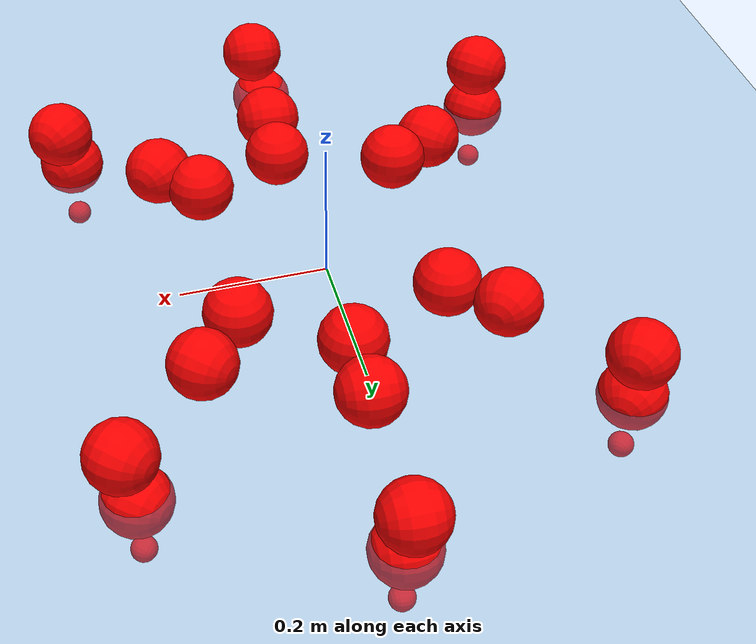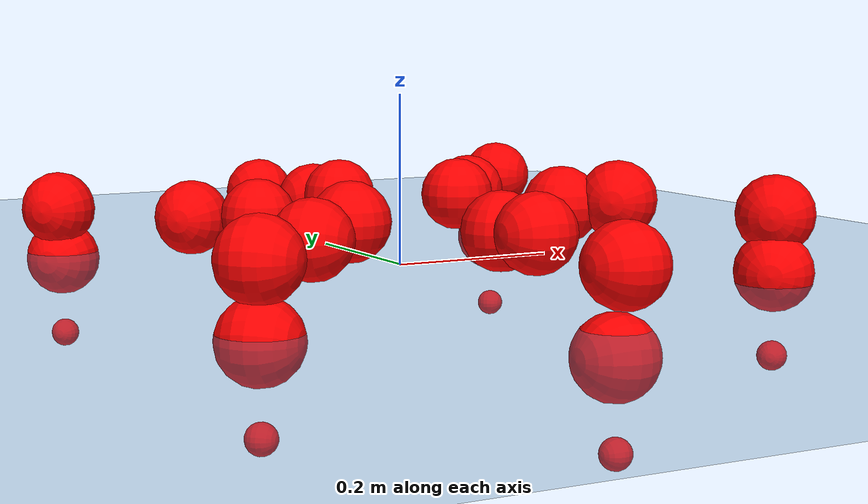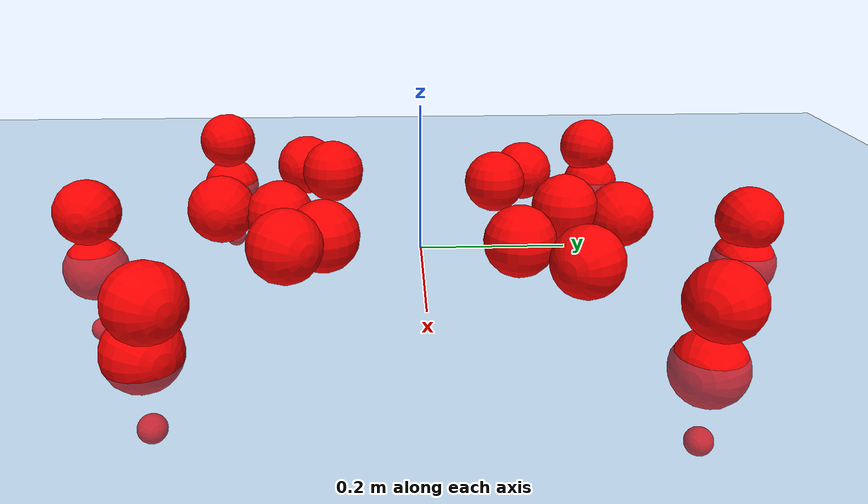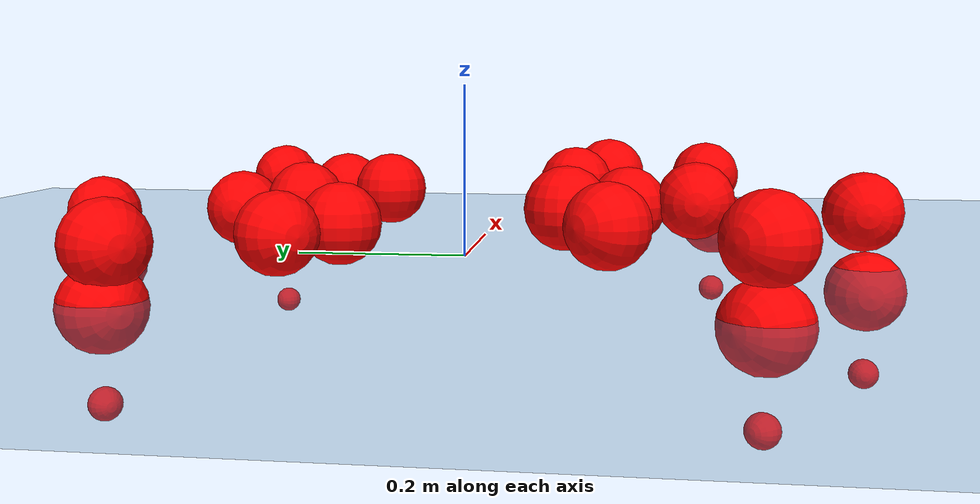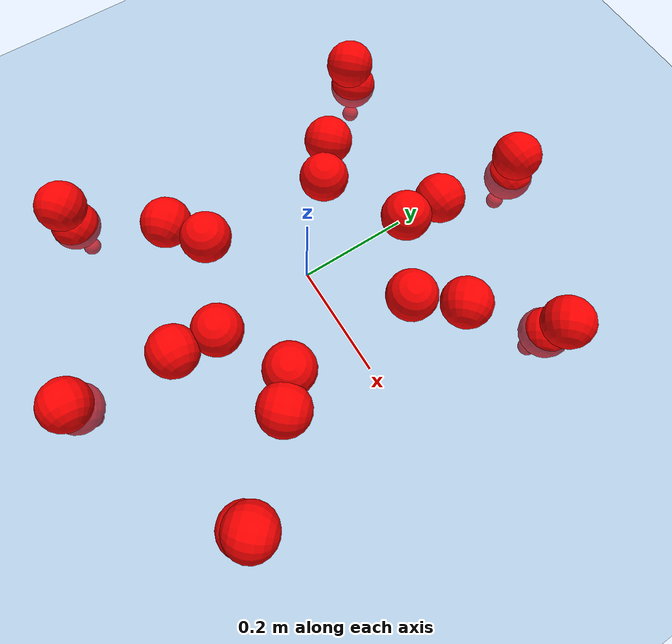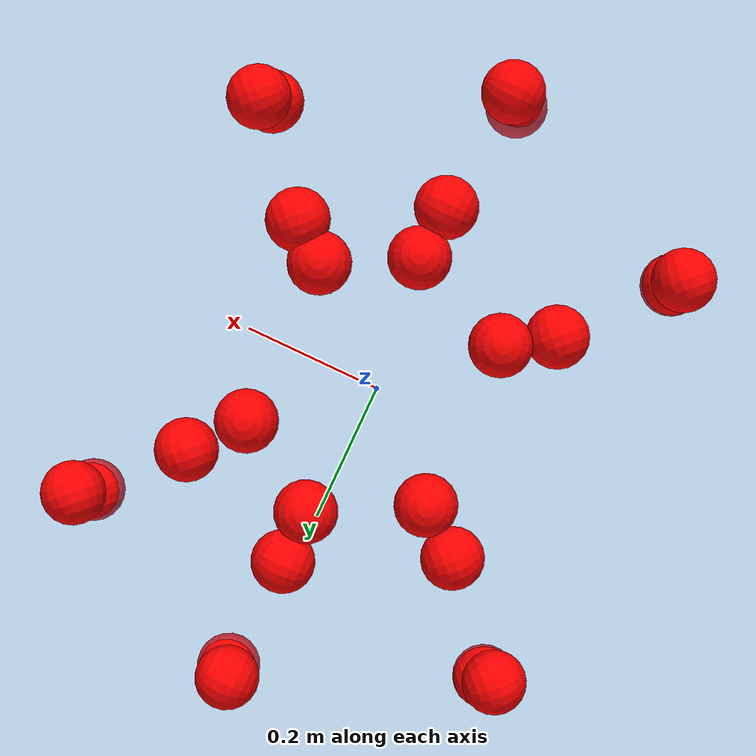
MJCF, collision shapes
<mujoco model="Golem">
  <compiler angle="radian" assetdir="assets" balanceinertia="true" inertiafromgeom="false"/>

  <option timestep="0.005" density="1.2" viscosity="2e-05"/>

  <size nkey="1"/>

  <visual>
    <quality shadowsize="8192"/>
    <map shadowclip="0.5"/>
  </visual>

  <default>
    <default class="/">
      <joint armature="0.01" damping="0.01" frictionloss="0.01"/>
      <geom contype="0" conaffinity="0" group="1" solref="-1000 -80"/>
      <site size="0.01 0.005 0.005" group="5"/>
      <general forcelimited="true" biastype="affine" gainprm="25" biasprm="0 -25 -0.5"/>
      <default class="visual">
        <geom type="mesh" group="2"/>
      </default>
      <default class="collision">
        <geom group="3"/>
      </default>
      <default class="foot">
        <geom size="0.01 0 0" condim="6" group="4" priority="1" solimp="0.015 1 0.01"/>
      </default>
      <default class="reward_collision_sphere">
        <geom group="5" rgba="1 0 0 1"/>
      </default>
    </default>
  </default>

  <asset>
    <texture type="skybox" colorspace="auto" name="//unnamed_texture_0" builtin="gradient" rgb1="0.95 0.95 0.95" rgb2="0.95 0.95 0.95" width="100" height="600"/>
    <texture type="2d" colorspace="auto" name="texplane" builtin="checker" rgb1="0.345 0.575 0.748" rgb2="0.345 0.575 0.748" markrgb="1 1 1" width="512" height="512"/>
    <material name="MatPlane" class="/" texture="texplane" texuniform="true" texrepeat="2 2" specular="0.9"/>
    <mesh name="body" class="/" file="body.stl" scale="0.001 0.001 0.001"/>
    <mesh name="coxa" class="/" file="coxa.stl" scale="0.001 0.001 0.001"/>
    <mesh name="femur" class="/" file="femur.stl" scale="0.001 0.001 0.001"/>
    <mesh name="tibia" class="/" file="tibia.stl" scale="0.001 0.001 0.001"/>
    <mesh name="tarsus" class="/" file="tarsus.stl" scale="0.001 0.001 0.001"/>
  </asset>

  <worldbody>
    <geom name="floor" class="/" size="100 100 0.125" type="plane" group="0" material="MatPlane"/>
    <light name="toplight_shadow" class="/" pos="0 0 5" dir="0.0990148 0.0990148 -0.990148" type="directional" ambient="0.04 0.04 0.04" diffuse="0.55 0.55 0.55" specular="0.12 0.12 0.12"/>
    <light name="toplight_fill" class="/" pos="0 0 5" dir="0.0990148 0.0990148 -0.990148" type="directional" castshadow="false" ambient="0.04 0.04 0.04" diffuse="0.3 0.3 0.3" specular="0.08 0.08 0.08"/>
    <body name="trunk" pos="0.00990591 0.00107934 0.00797632" quat="0.999999 0.00081982 -0.0013361 -0.000272293">
      <inertial pos="0.00320597 0.00501816 0.0134062" quat="0.997659 0.0204665 0.0383878 0.0527713" mass="5.74818" diaginertia="0.0060145 0.112214 0.0053152"/>
      <joint name="//unnamed_joint_0" type="free"/>
      <geom name="//unnamed_geom_1" class="/" pos="0 0 0.0552061" quat="1 0 0 0" type="mesh" rgba="0.9 0.9 0.9 1" mesh="body"/>
      <site name="imu" class="/" pos="0.0773148 0.0284879 0.124027" size="0.0112002"/>
      <camera name="track" class="/" pos="0 -3.23881 0" quat="0.707107 0.707107 0 0" mode="trackcom"/>
      <camera name="ego_camera" class="/" pos="0.114146 0 0.0862595" quat="-0.5 -0.5 0.5 0.5"/>
      <body name="coxa_RR" pos="-0.15636 -0.145393 0.0650133" quat="0.382684 -7.09625e-06 2.36216e-06 -0.923879">
        <inertial pos="0.00576871 0.00067168 0.00708861" quat="0.998904 -0.00531864 0.0395784 -0.02442" mass="0.32333" diaginertia="0.00500541 0.127389 0.00549166"/>
        <joint name="coxa_joint_RR" class="/" pos="0 0 0" axis="0.0334111 -0.0261918 -0.999098" range="-2.99855 2.86676" armature="0.0155983" damping="0.0209825" frictionloss="0.0159939"/>
        <geom name="//unnamed_geom_2" class="/" type="mesh" rgba="0.2 0.2 0.2 1" mesh="coxa"/>
        <geom name="//unnamed_geom_3" class="reward_collision_sphere" size="0.0448006" pos="-0.0263414 0 0"/>
        <body name="femur_RR" pos="0.0519973 -0.0154522 -0.00967366" quat="0.499077 -0.500242 0.500976 0.499703">
          <inertial pos="0.00640285 -0.0133977 -0.0149477" quat="0.999824 -0.00164311 0.0104473 0.0154947" mass="0.280782" diaginertia="0.00449583 0.102655 0.00394822"/>
          <joint name="femur_joint_RR" class="/" pos="0 0 0" axis="-0.0237414 0.00886854 -0.999679" stiffness="0.0214584" range="-3.20793 3.11866" armature="0.0080756" damping="0" frictionloss="0.00271509"/>
          <geom name="//unnamed_geom_4" class="/" type="mesh" rgba="0.9 0.9 0.9 1" mesh="femur"/>
          <geom name="//unnamed_geom_5" class="reward_collision_sphere" size="0.0448006"/>
          <body name="tibia_RR" pos="-0.00707514 -0.188426 0.0144747" quat="0.000271499 1 -0.000354282 0.000544211">
            <inertial pos="-0.00827425 0.013964 -0.00117622" quat="0.999952 -0.00278766 0.00873159 -0.00351658" mass="0.259019" diaginertia="0.0051989 0.112581 0.00481075"/>
            <joint name="tibia_joint_RR" class="/" pos="0 0 0" axis="0.000521107 0.00830602 0.999965" range="-3.13233 3.11823" armature="0.0103749" damping="0" frictionloss="0.0163997"/>
            <geom name="//unnamed_geom_6" class="/" type="mesh" rgba="0.2 0.2 0.2 1" mesh="tibia"/>
            <geom name="//unnamed_geom_7" class="reward_collision_sphere" size="0.0448006"/>
            <body name="tarsus_RR" pos="0.0780798 -0.000344534 0.000190129" quat="0.999999 -0.000589959 0.000729655 -0.000349616">
              <inertial pos="0.0617469 -0.00148129 0.0021036" quat="0.528891 0.481817 0.510166 0.477344" mass="0.239846" diaginertia="0.00429016 0.116094 0.00450866"/>
              <joint name="tarsus_joint_RR" class="/" pos="0 0 0" axis="0.0159453 -0.0216026 0.999639" stiffness="0.000752671" range="-2.84248 2.83147" armature="0.0104097" damping="0" frictionloss="0.0110314"/>
              <geom name="//unnamed_geom_8" class="/" type="mesh" rgba="0.9 0.9 0.9 1" mesh="tarsus"/>
              <geom name="foot_1" class="foot" size="0.00721553" pos="0.0983412 0 0" quat="0 -0.707107 0 0.707107"/>
              <geom name="//unnamed_geom_10" class="reward_collision_sphere" size="0.0448006"/>
              <geom name="//unnamed_geom_11" class="reward_collision_sphere" size="0.0168002" pos="0.09439 0 0"/>
              <site name="foot_1" class="foot" pos="0.0983412 0 0" quat="0 -0.707107 0 0.707107" size="0.0112002"/>
            </body>
          </body>
        </body>
      </body>
      <body name="coxa_RM" pos="0.0137558 -0.215735 0.0528844" quat="0.705261 -0.00135628 -0.00218564 -0.708944">
        <inertial pos="-0.00116929 0.00886799 0.00020769" quat="0.997389 0.0573634 0.0342593 -0.0274045" mass="0.231056" diaginertia="0.00418707 0.108893 0.00408704"/>
        <joint name="coxa_joint_RM" class="/" pos="0 0 0" axis="0.0238551 0.00949811 -0.99967" stiffness="0.00649054" range="-3.06341 3.07586" armature="0.0115794" damping="0" frictionloss="0.0125692"/>
        <geom name="//unnamed_geom_12" class="/" type="mesh" rgba="0.2 0.2 0.2 1" mesh="coxa"/>
        <geom name="//unnamed_geom_13" class="reward_collision_sphere" size="0.0448006" pos="-0.0263414 0 0"/>
        <body name="femur_RM" pos="0.0510615 -0.0037169 0.00630477" quat="0.50434 -0.50173 0.495607 0.498279">
          <inertial pos="0.0138069 0.00851551 0.0152241" quat="0.999942 -0.00923854 0.00451428 -0.00326736" mass="0.238981" diaginertia="0.00539445 0.11062 0.00434849"/>
          <joint name="femur_joint_RM" class="/" pos="0 0 0" axis="0.0401857 0.006806 -0.999169" range="-3.23053 2.86957" armature="0.00804914" damping="0.0105463" frictionloss="0.0184038"/>
          <geom name="//unnamed_geom_14" class="/" type="mesh" rgba="0.9 0.9 0.9 1" mesh="femur"/>
          <geom name="//unnamed_geom_15" class="reward_collision_sphere" size="0.0448006"/>
          <body name="tibia_RM" pos="0.0108595 -0.183715 -0.0148291" quat="-0.00321296 0.999993 -0.00211872 0.000305562">
            <inertial pos="-0.0028784 -0.00495551 0.00198115" quat="0.999996 0.00201738 0.00219928 -0.000245531" mass="0.253795" diaginertia="0.00420286 0.0913891 0.00425976"/>
            <joint name="tibia_joint_RM" class="/" pos="0 0 0" axis="-0.067409 0.0100662 0.997675" stiffness="0.00794643" range="-3.2656 3.38658" armature="0.0125493" damping="0.0492311" frictionloss="0.00717552"/>
            <geom name="//unnamed_geom_16" class="/" type="mesh" rgba="0.2 0.2 0.2 1" mesh="tibia"/>
            <geom name="//unnamed_geom_17" class="reward_collision_sphere" size="0.0448006"/>
            <body name="tarsus_RM" pos="0.0877813 0.0019238 0.0133544" quat="0.999999 0.000586926 -0.00059236 0.00108412">
              <inertial pos="0.0572463 0.000768133 -0.00995802" quat="0.483181 0.483236 0.546258 0.484378" mass="0.264095" diaginertia="0.00428508 0.103787 0.00524713"/>
              <joint name="tarsus_joint_RM" class="/" pos="0 0 0" axis="-0.0266267 0.0115507 0.999579" stiffness="0.0254507" range="-2.88872 3.42245" armature="0.0105864" damping="0" frictionloss="0.0137218"/>
              <geom name="//unnamed_geom_18" class="/" type="mesh" rgba="0.9 0.9 0.9 1" mesh="tarsus"/>
              <geom name="foot_2" class="foot" size="0.00891617" pos="0.0983412 0 0" quat="0 -0.707107 0 0.707107"/>
              <geom name="//unnamed_geom_20" class="reward_collision_sphere" size="0.0448006"/>
              <geom name="//unnamed_geom_21" class="reward_collision_sphere" size="0.0168002" pos="0.09439 0 0"/>
              <site name="foot_2" class="foot" pos="0.0983412 0 0" quat="0 -0.707107 0 0.707107" size="0.0112002"/>
            </body>
          </body>
        </body>
      </body>
      <body name="coxa_RF" pos="0.153345 -0.141689 0.0673138" quat="0.92458 0.00385159 0.000861326 -0.380967">
        <inertial pos="-0.00606501 0.0159692 -0.00383699" quat="0.999674 -0.0221017 0.00960981 0.00845991" mass="0.265719" diaginertia="0.00498277 0.0948462 0.00405759"/>
        <joint name="coxa_joint_RF" class="/" pos="0 0 0" axis="-0.016855 0.0233456 -0.999585" stiffness="0.0233882" range="-3.13227 2.93578" armature="0.012307" damping="0.0619341" frictionloss="0.0109311"/>
        <geom name="//unnamed_geom_22" class="/" type="mesh" rgba="0.2 0.2 0.2 1" mesh="coxa"/>
        <geom name="//unnamed_geom_23" class="reward_collision_sphere" size="0.0448006" pos="-0.0263414 0 0"/>
        <body name="femur_RF" pos="0.0381991 0.00737368 0.00807009" quat="0.500023 -0.500085 0.499912 0.499979">
          <inertial pos="-0.00277773 -0.000316211 -0.0113638" quat="0.999705 -0.0130902 -0.00529221 0.0197609" mass="0.285641" diaginertia="0.00510719 0.11857 0.00432092"/>
          <joint name="femur_joint_RF" class="/" pos="0 0 0" axis="-0.000201168 -0.000826933 -1" range="-3.41042 3.05787" armature="0.0122019" damping="0.0105159" frictionloss="0.0171689"/>
          <geom name="//unnamed_geom_24" class="/" type="mesh" rgba="0.9 0.9 0.9 1" mesh="femur"/>
          <geom name="//unnamed_geom_25" class="reward_collision_sphere" size="0.0448006"/>
          <body name="tibia_RF" pos="0.00965553 -0.177233 -0.00711637" quat="0.000323383 1 3.74494e-05 -0.000164786">
            <inertial pos="-0.00999434 0.00776386 -0.000717689" quat="0.997382 0.0204211 -0.0671246 0.0174862" mass="0.256908" diaginertia="0.00536165 0.124989 0.00464565"/>
            <joint name="tibia_joint_RF" class="/" pos="0 0 0" axis="0.0167004 0.0522585 0.998494" range="-3.14016 3.12353" armature="0.00909123" damping="0" frictionloss="0.0120716"/>
            <geom name="//unnamed_geom_26" class="/" type="mesh" rgba="0.2 0.2 0.2 1" mesh="tibia"/>
            <geom name="//unnamed_geom_27" class="reward_collision_sphere" size="0.0448006"/>
            <body name="tarsus_RF" pos="0.062176 0.00157384 0.0159536" quat="0.999991 0.00119813 -0.00132025 0.003825">
              <inertial pos="0.0456957 0.0122595 -0.00534072" quat="0.521355 0.484574 0.50111 0.492205" mass="0.333408" diaginertia="0.00531214 0.128467 0.00433284"/>
              <joint name="tarsus_joint_RF" class="/" pos="0 0 0" axis="0.0503765 0.0295065 0.998294" stiffness="0.0155906" range="-2.92194 3.12988" armature="0.0112562" damping="0" frictionloss="0.014078"/>
              <geom name="//unnamed_geom_28" class="/" type="mesh" rgba="0.9 0.9 0.9 1" mesh="tarsus"/>
              <geom name="foot_3" class="foot" size="0.00986802" pos="0.0983412 0 0" quat="0 -0.707107 0 0.707107"/>
              <geom name="//unnamed_geom_30" class="reward_collision_sphere" size="0.0448006"/>
              <geom name="//unnamed_geom_31" class="reward_collision_sphere" size="0.0168002" pos="0.09439 0 0"/>
              <site name="foot_3" class="foot" pos="0.0983412 0 0" quat="0 -0.707107 0 0.707107" size="0.0112002"/>
            </body>
          </body>
        </body>
      </body>
      <body name="coxa_LR" pos="-0.158635 0.134445 0.0449979" quat="0.381554 0.00213582 -0.00272112 0.92434">
        <inertial pos="0.00348817 0.00388915 -0.0122411" quat="0.999957 -0.00328624 -0.00772084 0.00390557" mass="0.276417" diaginertia="0.00490121 0.105107 0.0052014"/>
        <joint name="coxa_joint_LR" class="/" pos="0 0 0" axis="0.0130812 0.00229103 -0.999912" stiffness="0.0546318" range="-2.98975 3.02674" armature="0.0151404" damping="0.0211005" frictionloss="0.0189812"/>
        <geom name="//unnamed_geom_32" class="/" type="mesh" rgba="0.2 0.2 0.2 1" mesh="coxa"/>
        <geom name="//unnamed_geom_33" class="reward_collision_sphere" size="0.0448006" pos="-0.0263414 0 0"/>
        <body name="femur_LR" pos="0.0553226 0.00951737 -0.00375628" quat="0.500213 -0.501708 0.499179 0.498895">
          <inertial pos="-0.0129224 0.00694753 -0.0105826" quat="0.999556 0.0141942 0.0155108 0.0211175" mass="0.335185" diaginertia="0.00529591 0.112635 0.00490111"/>
          <joint name="femur_joint_LR" class="/" pos="0 0 0" axis="0.00256263 -0.00342896 0.999991" range="-2.84094 3.40827" armature="0.0188278" damping="0" frictionloss="0.0112111"/>
          <geom name="//unnamed_geom_34" class="/" type="mesh" rgba="0.9 0.9 0.9 1" mesh="femur"/>
          <geom name="//unnamed_geom_35" class="reward_collision_sphere" size="0.0448006"/>
          <body name="tibia_LR" pos="-0.00247289 -0.179948 -0.00445806" quat="0.00301216 0.999992 0.00208992 -0.00156911">
            <inertial pos="-0.00822213 0.0108974 -0.00108544" quat="0.999989 -0.00233995 0.00397271 -0.000425123" mass="0.242487" diaginertia="0.00496253 0.0950073 0.00535593"/>
            <joint name="tibia_joint_LR" class="/" pos="0 0 0" axis="0.0397771 -0.0485701 -0.998027" stiffness="0.040632" range="-3.19156 3.38074" armature="0.0144796" damping="0" frictionloss="0.0114414"/>
            <geom name="//unnamed_geom_36" class="/" type="mesh" rgba="0.2 0.2 0.2 1" mesh="tibia"/>
            <geom name="//unnamed_geom_37" class="reward_collision_sphere" size="0.0448006"/>
            <body name="tarsus_LR" pos="0.0630512 0.00031615 0.00966431" quat="0.999977 -0.00656173 0.000212879 -0.00171978">
              <inertial pos="0.0647718 0.0114971 0.0052278" quat="0.499263 0.503027 0.500636 0.497056" mass="0.283852" diaginertia="0.00540455 0.132784 0.00437236"/>
              <joint name="tarsus_joint_LR" class="/" pos="0 0 0" axis="0.00620187 0.00617975 -0.999962" stiffness="0.0434069" range="-3.13014 3.12272" armature="0.0073395" damping="0" frictionloss="0.0040148"/>
              <geom name="//unnamed_geom_38" class="/" type="mesh" rgba="0.9 0.9 0.9 1" mesh="tarsus"/>
              <geom name="foot_4" class="foot" size="0.0105102" pos="0.0983412 0 0" quat="0.707107 0 -0.707107 0"/>
              <geom name="//unnamed_geom_40" class="reward_collision_sphere" size="0.0448006"/>
              <geom name="//unnamed_geom_41" class="reward_collision_sphere" size="0.0168002" pos="0.09439 0 0"/>
              <site name="foot_4" class="foot" pos="0.0983412 0 0" quat="0.707107 0 -0.707107 0" size="0.0112002"/>
            </body>
          </body>
        </body>
      </body>
      <body name="coxa_LM" pos="0.00646424 0.220163 0.0546147" quat="0.707114 -0.00053078 -0.000218832 0.7071">
        <inertial pos="-0.0125662 -0.000916182 -0.00580011" quat="0.999557 0.0190047 0.0210003 -0.0091036" mass="0.32758" diaginertia="0.00486434 0.128955 0.00583629"/>
        <joint name="coxa_joint_LM" class="/" pos="0 0 0" axis="0.000457733 -0.00286669 -0.999996" range="-3.18718 3.15286" armature="0.01066" damping="0.0480557" frictionloss="0.0162484"/>
        <geom name="//unnamed_geom_42" class="/" type="mesh" rgba="0.2 0.2 0.2 1" mesh="coxa"/>
        <geom name="//unnamed_geom_43" class="reward_collision_sphere" size="0.0448006" pos="-0.0263414 0 0"/>
        <body name="femur_LM" pos="0.0501326 0.000565353 -0.0115292" quat="0.499768 -0.499955 0.500245 0.500032">
          <inertial pos="-0.00926043 0.000759383 0.008178" quat="0.999626 -0.0258951 -0.0062066 -0.00625986" mass="0.264035" diaginertia="0.00545606 0.099402 0.00353347"/>
          <joint name="femur_joint_LM" class="/" pos="0 0 0" axis="0.0578979 0.0407454 0.997491" stiffness="0.00156444" range="-3.41395 3.28625" armature="0.0129921" damping="0.0863079" frictionloss="0.011369"/>
          <geom name="//unnamed_geom_44" class="/" type="mesh" rgba="0.9 0.9 0.9 1" mesh="femur"/>
          <geom name="//unnamed_geom_45" class="reward_collision_sphere" size="0.0448006"/>
          <body name="tibia_LM" pos="0.00877618 -0.179926 -0.00169148" quat="-0.00220978 0.999996 0.000112043 -0.00147083">
            <inertial pos="0.013809 0.00080586 0.00108499" quat="0.999622 0.0124017 -0.0185467 -0.0160913" mass="0.264033" diaginertia="0.00507207 0.10864 0.00419283"/>
            <joint name="tibia_joint_LM" class="/" pos="0 0 0" axis="-0.000463233 0.00547121 -0.999985" range="-3.23918 3.28541" armature="0.016963" damping="0" frictionloss="0.0200382"/>
            <geom name="//unnamed_geom_46" class="/" type="mesh" rgba="0.2 0.2 0.2 1" mesh="tibia"/>
            <geom name="//unnamed_geom_47" class="reward_collision_sphere" size="0.0448006"/>
            <body name="tarsus_LM" pos="0.0637198 -0.00281914 0.00588473" quat="0.999996 0.00280715 -7.31201e-07 0.000104734">
              <inertial pos="0.0641461 -0.000269566 0.00930121" quat="0.463359 0.482397 0.506171 0.54441" mass="0.268196" diaginertia="0.00545484 0.11094 0.00496765"/>
              <joint name="tarsus_joint_LM" class="/" pos="0 0 0" axis="-0.0165656 -0.00489232 -0.999851" stiffness="0.00775277" range="-3.35726 3.15026" armature="0.00809429" damping="0" frictionloss="0.0101688"/>
              <geom name="//unnamed_geom_48" class="/" type="mesh" rgba="0.9 0.9 0.9 1" mesh="tarsus"/>
              <geom name="foot_5" class="foot" size="0.00453571" pos="0.0983412 0 0" quat="0.707107 0 -0.707107 0"/>
              <geom name="//unnamed_geom_50" class="reward_collision_sphere" size="0.0448006"/>
              <geom name="//unnamed_geom_51" class="reward_collision_sphere" size="0.0168002" pos="0.09439 0 0"/>
              <site name="foot_5" class="foot" pos="0.0983412 0 0" quat="0.707107 0 -0.707107 0" size="0.0112002"/>
            </body>
          </body>
        </body>
      </body>
      <body name="coxa_LF" pos="0.152228 0.13384 0.0567907" quat="0.925092 -2.35131e-05 0.000205642 0.379744">
        <inertial pos="0.000776245 0.0148371 0.00451257" quat="0.997948 -0.0111997 0.0544713 -0.0317358" mass="0.212906" diaginertia="0.00424824 0.0944696 0.00402992"/>
        <joint name="coxa_joint_LF" class="/" pos="0 0 0" axis="0.0411735 -0.0149025 -0.999041" stiffness="0.0531624" range="-3.35177 3.13396" armature="0.00668746" damping="0" frictionloss="0.017831"/>
        <geom name="//unnamed_geom_52" class="/" type="mesh" rgba="0.2 0.2 0.2 1" mesh="coxa"/>
        <geom name="//unnamed_geom_53" class="reward_collision_sphere" size="0.0448006" pos="-0.0263414 0 0"/>
        <body name="femur_LF" pos="0.0648563 0.00996432 -0.00403286" quat="0.499253 -0.500392 0.501434 0.498917">
          <inertial pos="0.00196705 -0.00955013 0.0125886" quat="0.999764 -0.00164135 0.0213324 0.00381568" mass="0.253591" diaginertia="0.0043052 0.0979548 0.00483304"/>
          <joint name="femur_joint_LF" class="/" pos="0 0 0" axis="-0.0206 0.0109029 0.999728" stiffness="0.0694701" range="-3.06084 3.12123" armature="0.00567273" damping="0.000639852" frictionloss="0.0114928"/>
          <geom name="//unnamed_geom_54" class="/" type="mesh" rgba="0.9 0.9 0.9 1" mesh="femur"/>
          <geom name="//unnamed_geom_55" class="reward_collision_sphere" size="0.0448006"/>
          <body name="tibia_LF" pos="-0.00301532 -0.165607 0.00426307" quat="0.000291808 1 -0.000111008 0.00026223">
            <inertial pos="-0.0136432 -0.0137235 -0.0153268" quat="0.999595 0.019036 0.0147303 -0.0151797" mass="0.280995" diaginertia="0.0051071 0.0978549 0.00385291"/>
            <joint name="tibia_joint_LF" class="/" pos="0 0 0" axis="0.0188869 0.0283445 -0.99942" range="-3.33895 3.4124" armature="0.0132854" damping="0.0056989" frictionloss="0.016467"/>
            <geom name="//unnamed_geom_56" class="/" type="mesh" rgba="0.2 0.2 0.2 1" mesh="tibia"/>
            <geom name="//unnamed_geom_57" class="reward_collision_sphere" size="0.0448006"/>
            <body name="tarsus_LF" pos="0.0859746 -0.00952115 -0.0056985" quat="1 7.98587e-05 0.000194972 0.000248084">
              <inertial pos="0.0625232 0.00484604 -0.0136506" quat="0.486943 0.503244 0.462715 0.543624" mass="0.276368" diaginertia="0.0043558 0.111987 0.00384521"/>
              <joint name="tarsus_joint_LF" class="/" pos="0 0 0" axis="0.00146489 0.00423601 -0.99999" range="-2.89852 3.42" armature="0.00606884" damping="0" frictionloss="0.0064408"/>
              <geom name="//unnamed_geom_58" class="/" type="mesh" rgba="0.9 0.9 0.9 1" mesh="tarsus"/>
              <geom name="foot_6" class="foot" size="0.00715659" pos="0.0983412 0 0" quat="0.707107 0 -0.707107 0"/>
              <geom name="//unnamed_geom_60" class="reward_collision_sphere" size="0.0448006"/>
              <geom name="//unnamed_geom_61" class="reward_collision_sphere" size="0.0168002" pos="0.09439 0 0"/>
              <site name="foot_6" class="foot" pos="0.0983412 0 0" quat="0.707107 0 -0.707107 0" size="0.0112002"/>
            </body>
          </body>
        </body>
      </body>
    </body>
  </worldbody>

  <contact>
    <pair class="/" geom1="floor" geom2="foot_1" name="//unnamed_contact_0"/>
    <pair class="/" geom1="floor" geom2="foot_2" name="//unnamed_contact_1"/>
    <pair class="/" geom1="floor" geom2="foot_3" name="//unnamed_contact_2"/>
    <pair class="/" geom1="floor" geom2="foot_4" name="//unnamed_contact_3"/>
    <pair class="/" geom1="floor" geom2="foot_5" name="//unnamed_contact_4"/>
    <pair class="/" geom1="floor" geom2="foot_6" name="//unnamed_contact_5"/>
  </contact>

  <actuator>
    <general name="coxa_joint_RR" class="/" joint="coxa_joint_RR" forcerange="-9.43835 9.43835" gainprm="17.4199" biasprm="0 -17.4199 -0.554831"/>
    <general name="femur_joint_RR" class="/" joint="femur_joint_RR" forcerange="-8.2551 8.2551" gainprm="17.4199" biasprm="0 -17.4199 -0.554831"/>
    <general name="tibia_joint_RR" class="/" joint="tibia_joint_RR" forcerange="-8.41198 8.41198" gainprm="17.4199" biasprm="0 -17.4199 -0.554831"/>
    <general name="tarsus_joint_RR" class="/" joint="tarsus_joint_RR" forcerange="-7.66457 7.66457" gainprm="17.4199" biasprm="0 -17.4199 -0.554831"/>
    <general name="coxa_joint_RM" class="/" joint="coxa_joint_RM" forcerange="-8.64893 8.64893" gainprm="17.4199" biasprm="0 -17.4199 -0.554831"/>
    <general name="femur_joint_RM" class="/" joint="femur_joint_RM" forcerange="-8.2476 8.2476" gainprm="17.4199" biasprm="0 -17.4199 -0.554831"/>
    <general name="tibia_joint_RM" class="/" joint="tibia_joint_RM" forcerange="-7.8444 7.8444" gainprm="17.4199" biasprm="0 -17.4199 -0.554831"/>
    <general name="tarsus_joint_RM" class="/" joint="tarsus_joint_RM" forcerange="-11.5053 11.5053" gainprm="17.4199" biasprm="0 -17.4199 -0.554831"/>
    <general name="coxa_joint_RF" class="/" joint="coxa_joint_RF" forcerange="-8.61133 8.61133" gainprm="17.4199" biasprm="0 -17.4199 -0.554831"/>
    <general name="femur_joint_RF" class="/" joint="femur_joint_RF" forcerange="-8.11753 8.11753" gainprm="17.4199" biasprm="0 -17.4199 -0.554831"/>
    <general name="tibia_joint_RF" class="/" joint="tibia_joint_RF" forcerange="-8.46911 8.46911" gainprm="17.4199" biasprm="0 -17.4199 -0.554831"/>
    <general name="tarsus_joint_RF" class="/" joint="tarsus_joint_RF" forcerange="-9.54513 9.54513" gainprm="17.4199" biasprm="0 -17.4199 -0.554831"/>
    <general name="coxa_joint_LR" class="/" joint="coxa_joint_LR" forcerange="-9.97087 9.97087" gainprm="17.4199" biasprm="0 -17.4199 -0.554831"/>
    <general name="femur_joint_LR" class="/" joint="femur_joint_LR" forcerange="-11.9194 11.9194" gainprm="17.4199" biasprm="0 -17.4199 -0.554831"/>
    <general name="tibia_joint_LR" class="/" joint="tibia_joint_LR" forcerange="-7.25609 7.25609" gainprm="17.4199" biasprm="0 -17.4199 -0.554831"/>
    <general name="tarsus_joint_LR" class="/" joint="tarsus_joint_LR" forcerange="-8.39389 8.39389" gainprm="17.4199" biasprm="0 -17.4199 -0.554831"/>
    <general name="coxa_joint_LM" class="/" joint="coxa_joint_LM" forcerange="-8.16904 8.16904" gainprm="17.4199" biasprm="0 -17.4199 -0.554831"/>
    <general name="femur_joint_LM" class="/" joint="femur_joint_LM" forcerange="-10.4944 10.4944" gainprm="17.4199" biasprm="0 -17.4199 -0.554831"/>
    <general name="tibia_joint_LM" class="/" joint="tibia_joint_LM" forcerange="-8.21133 8.21133" gainprm="17.4199" biasprm="0 -17.4199 -0.554831"/>
    <general name="tarsus_joint_LM" class="/" joint="tarsus_joint_LM" forcerange="-5.50257 5.50257" gainprm="17.4199" biasprm="0 -17.4199 -0.554831"/>
    <general name="coxa_joint_LF" class="/" joint="coxa_joint_LF" forcerange="-9.80732 9.80732" gainprm="17.4199" biasprm="0 -17.4199 -0.554831"/>
    <general name="femur_joint_LF" class="/" joint="femur_joint_LF" forcerange="-4.96139 4.96139" gainprm="17.4199" biasprm="0 -17.4199 -0.554831"/>
    <general name="tibia_joint_LF" class="/" joint="tibia_joint_LF" forcerange="-7.96664 7.96664" gainprm="17.4199" biasprm="0 -17.4199 -0.554831"/>
    <general name="tarsus_joint_LF" class="/" joint="tarsus_joint_LF" forcerange="-12.971 12.971" gainprm="17.4199" biasprm="0 -17.4199 -0.554831"/>
  </actuator>

  <sensor>
    <gyro site="imu" name="imu_angular_velocity"/>
    <velocimeter site="imu" name="imu_linear_velocity"/>
    <framelinvel objtype="site" objname="foot_1" name="foot_1_global_linear_velocity"/>
    <framelinvel objtype="site" objname="foot_2" name="foot_2_global_linear_velocity"/>
    <framelinvel objtype="site" objname="foot_3" name="foot_3_global_linear_velocity"/>
    <framelinvel objtype="site" objname="foot_4" name="foot_4_global_linear_velocity"/>
    <framelinvel objtype="site" objname="foot_5" name="foot_5_global_linear_velocity"/>
    <framelinvel objtype="site" objname="foot_6" name="foot_6_global_linear_velocity"/>
  </sensor>

  <keyframe>
    <key name="home" qpos="0 0 0.1457 1 0 0 0 0 0 0 0 0 0 0 0 0 0 0 0 0 0 0 0 0 0 0 0 0 0 0 0"/>
  </keyframe>
</mujoco>
